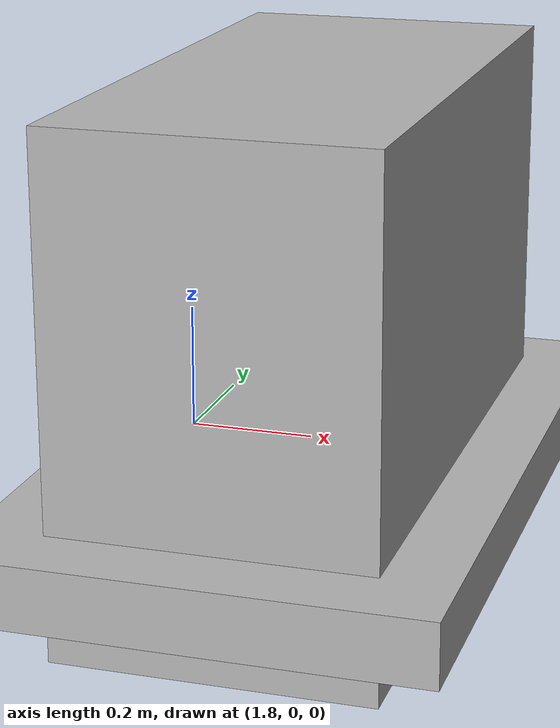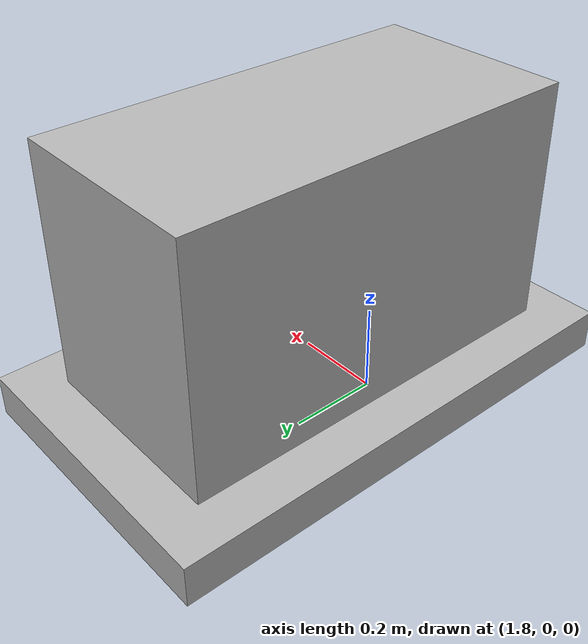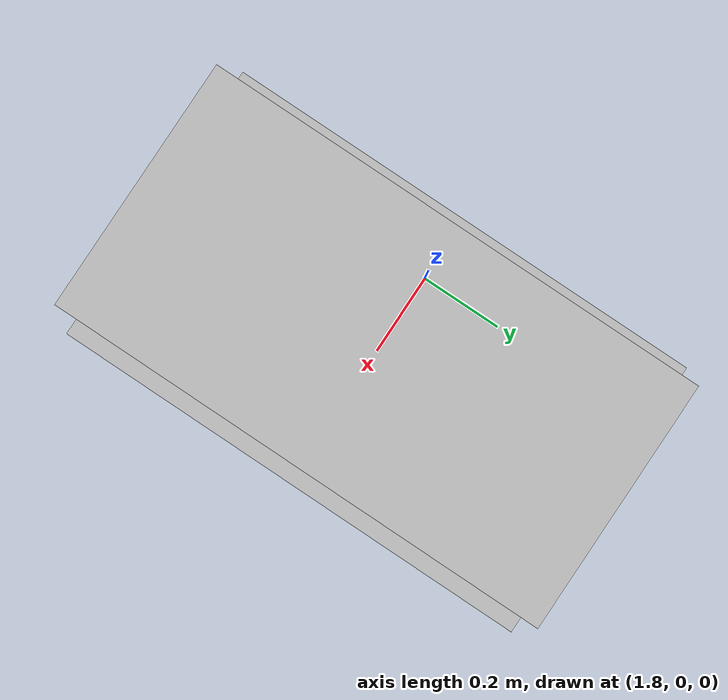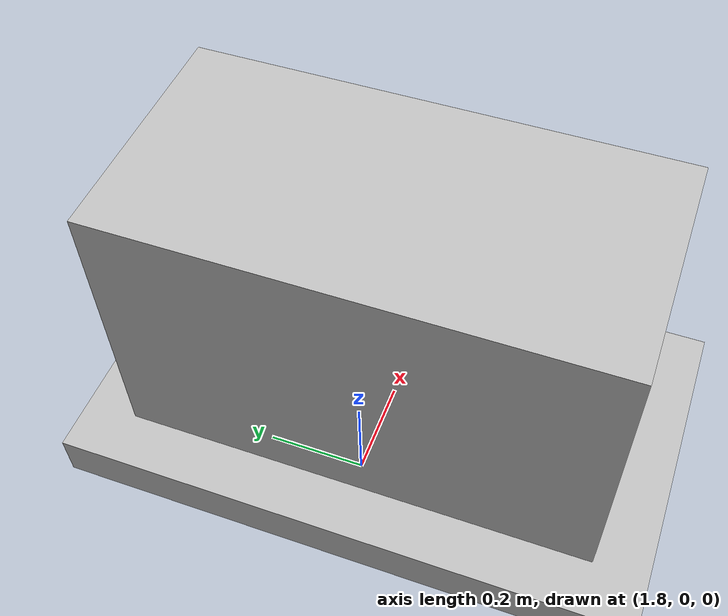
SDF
<sdf version='1.11'>
  <world name='restaurant_world'>

    <plugin
      filename='gz-sim-physics-system'
      name='gz::sim::systems::Physics'>
    </plugin>

    <plugin
      filename='gz-sim-user-commands-system'
      name='gz::sim::systems::UserCommands'>
    </plugin>

    <plugin
      filename='gz-sim-scene-broadcaster-system'
      name='gz::sim::systems::SceneBroadcaster'>
    </plugin>

    <plugin
      filename='gz-sim-sensors-system'
      name='gz::sim::systems::Sensors'>
      <render_engine>ogre2</render_engine>
    </plugin>

    <gravity>0 0 -9.8</gravity>

    <light type='directional' name='sun'>
      <cast_shadows>true</cast_shadows>
      <pose>0 0 10 0 0 0</pose>
      <diffuse>0.8 0.8 0.8 1</diffuse>
      <specular>0.2 0.2 0.2 1</specular>
      <direction>-0.5 0.1 -0.9</direction>
    </light>

    <model name='ground'>
      <static>true</static>

      <link name='ground_link'>
        <collision name='ground_collision'>
          <pose>0 0 -0.05 0 0 0 </pose>
          <geometry>
            <box>
              <size>20 20 0.1</size>
            </box>
          </geometry>
        </collision>

        <visual name='ground_visual'>
          <pose>0 0 -0.05 0 0 0</pose>
          <geometry>
            <box>
              <size>20 20 0.1</size>
            </box>
          </geometry>
        </visual>
      </link>
    </model>

    <model name='test_onstacle'>
      <static>true</static>

      <pose>2.0 0 0.2 0 0 0</pose>

      <link name='obstacle_link'>

        <collision name='obstacle_collision'>
          <geometry>
            <box>
              <size>0.5 1.0 0.8</size>
            </box>
          </geometry>
        </collision>

        <visual name='obstacle_visual'>
          <geometry>
            <box>
              <size>0.5 1.0 0.8</size>
            </box>
          </geometry>
        </visual>
      </link>
    </model>
  </world>
</sdf>
